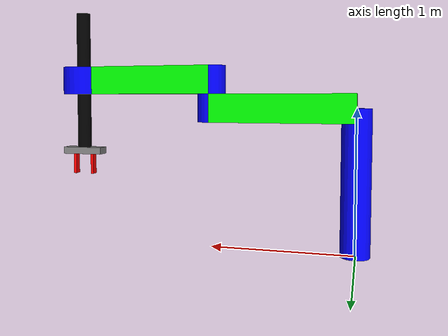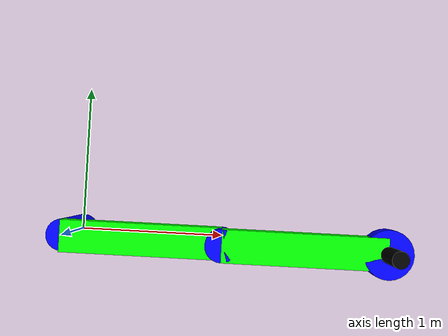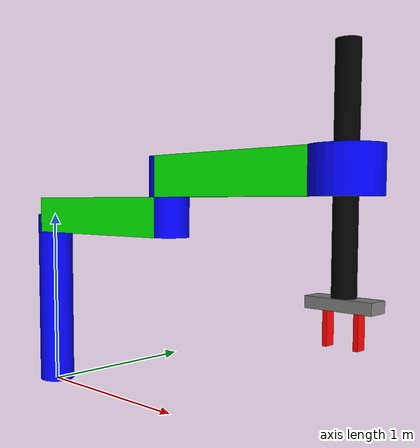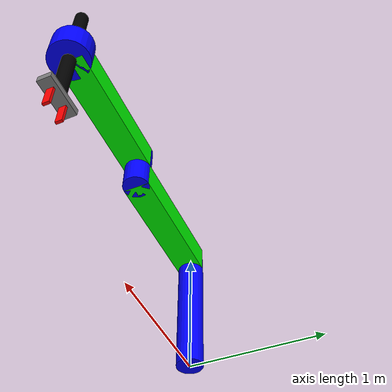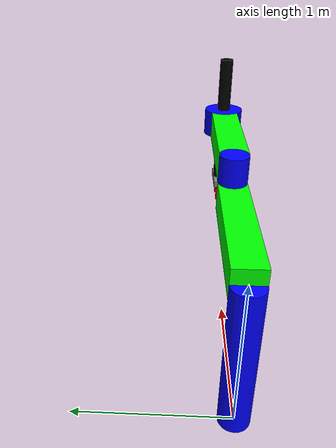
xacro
<?xml version="1.0" ?>
<robot xmlns:xacro="http://www.ros.org/wiki/xacro" name="SCARAbot">

    <xacro:include filename="$(find scara_robot_description)/urdf/robot_arm.urdf.xacro"/>
    <xacro:include filename="$(find scara_robot_description)/urdf/robot_gripper.urdf.xacro"/>

    <xacro:arg name="column_height" default="1.0"/>
    <xacro:arg name="upper_arm_length" default="1.0"/>
    <xacro:arg name="forearm_length" default="1.0"/>
    <xacro:arg name="forearm_z_offset" default="0.2"/>
    <xacro:arg name="quill_length" default="1.0"/>
    <xacro:arg name="finger_length" default="0.15"/>
    <xacro:arg name="shoulder_limit" default="${pi/2}"/>
    <xacro:arg name="elbow_limit" default="${pi/2}"/>
    <xacro:arg name="wrist_limit" default="${pi}"/>
    <xacro:arg name="quill_lower" default="-0.4"/>
    <xacro:arg name="quill_upper" default="0.3"/>
    <xacro:arg name="finger_min" default="0.02"/>
    <xacro:arg name="finger_stroke" default="0.1"/>

    <xacro:property name="quill_length" value="$(arg quill_length)"/>

    <link name="world"/>

    <xacro:scara_arm parent_link="world" xyz="0 0 0" rpy="0 0 0"
                     column_height="$(arg column_height)"
                     upper_arm_length="$(arg upper_arm_length)"
                     forearm_length="$(arg forearm_length)"
                     forearm_z_offset="$(arg forearm_z_offset)"
                     quill_length="${quill_length}"
                     shoulder_limit="$(arg shoulder_limit)"
                     elbow_limit="$(arg elbow_limit)"
                     wrist_limit="$(arg wrist_limit)"
                     quill_lower="$(arg quill_lower)"
                     quill_upper="$(arg quill_upper)"/>

    <xacro:scara_gripper parent_link="link_5" xyz="0 0 ${-quill_length/2}" rpy="0 0 0"
                         finger_length="$(arg finger_length)"
                         finger_min="$(arg finger_min)"
                         finger_stroke="$(arg finger_stroke)"/>

</robot>

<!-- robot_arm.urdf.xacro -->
<robot xmlns:xacro="http://www.ros.org/wiki/xacro" name="arm">
    <xacro:macro name="scara_arm" params="parent_link:='world' xyz:='0 0 0' rpy:='0 0 0'
                                         column_height:='1.0' upper_arm_length:='1.0' forearm_length:='1.0'
                                         forearm_z_offset:='0.2' quill_length:='1.0'
                                         shoulder_limit:='${pi/2}' elbow_limit:='${pi/2}' wrist_limit:='${pi}'
                                         quill_lower:='-0.5' quill_upper:='0.3'">

        <joint name="world_base_link_joint" type="fixed">
            <origin rpy="${rpy}" xyz="${xyz}"/>
            <parent link="${parent_link}"/>
            <child link="base_link"/>
        </joint>
        <link name="base_link">
            <visual>
                <origin rpy="0 0 0" xyz="0 0 ${column_height/2}" />
                <geometry>
                    <cylinder radius="0.1" length="${column_height}" />
                </geometry>
                <material name="Blue">
                    <color rgba="0.0 0.0 1.0 1.0" />
                </material>
            </visual>
        </link>
        <joint name="joint_1" type="revolute">
            <parent link="base_link"/>
            <child link="link_1"/>
            <origin xyz="0 0 ${column_height}" rpy="0 0 0"/>
            <axis xyz="0 0 1"/>
            <limit lower="${-shoulder_limit}" upper="${shoulder_limit}" effort="10.0" velocity="1.0"/>
        </joint>
        <link name="link_1">
            <visual>
                <origin xyz="${upper_arm_length/2} 0 0" rpy="0 0 0"/>
                <geometry>
                    <box size="${upper_arm_length} 0.2 0.2"/>
                </geometry>
                <material name="Green">
                    <color rgba="0.0 1.0 0.0 1.0" />
                </material>
            </visual>
        </link>
        <joint name="joint_2" type="revolute">
            <parent link="link_1"/>
            <child link="link_2"/>
            <origin xyz="${upper_arm_length} 0 0" rpy="0 0 0"/>
            <axis xyz="0 0 1"/>
            <limit lower="${-elbow_limit}" upper="${elbow_limit}" effort="10.0" velocity="1.0"/>
        </joint>
        <link name="link_2">
            <visual>
                <origin rpy="0 0 0" xyz="0 0 ${forearm_z_offset/2}" />
                <geometry>
                    <cylinder radius="0.1" length="${forearm_z_offset + 0.2}" />
                </geometry>
                <material name="Blue">
                    <color rgba="0.0 0.0 1.0 1.0" />
                </material>
            </visual>
        </link>
        <joint name="fixed_joint_1" type="fixed">
            <parent link="link_2"/>
            <child link="link_3"/>
            <origin xyz="0 0 0" rpy="0 0 0"/>
        </joint>
        <link name="link_3">
            <visual>
                <origin xyz="${forearm_length/2} 0 ${forearm_z_offset}" rpy="0 0 0" />
                <geometry>
                    <box size="${forearm_length} 0.2 0.2" />
                </geometry>
                <material name="Green">
                    <color rgba="0.0 1.0 0.0 1.0" />
                </material>
            </visual>
        </link>
        <joint name="joint_3" type="revolute">
            <parent link="link_2"/>
            <child link="link_4"/>
            <origin xyz="${forearm_length} 0 ${forearm_z_offset}" rpy="0 0 0"/>
            <axis xyz="0 0 1"/>
            <limit lower="${-wrist_limit}" upper="${wrist_limit}" effort="10.0" velocity="1.0"/>
        </joint>
        <link name="link_4">
            <visual>
                <origin rpy="0 0 0" xyz="0 0 0" />
                <geometry>
                    <cylinder radius="0.15" length="0.2" />
                </geometry>
                <material name="Blue">
                    <color rgba="0.0 0.0 1.0 1.0" />
                </material>
            </visual>
        </link>
        <joint name="joint_4" type="prismatic">
            <parent link="link_4"/>
            <child link="link_5"/>
            <origin xyz="0 0 0" rpy="0 0 0"/>
            <axis xyz="0 0 1"/>
            <limit lower="${quill_lower}" upper="${quill_upper}" effort="10" velocity="0.1"/>
        </joint>
        <link name="link_5">
            <visual>
                <origin rpy="0 0 0" xyz="0 0 0" />
                <geometry>
                    <cylinder radius="0.05" length="${quill_length}" />
                </geometry>
                <material name="Black">
                    <color rgba="0.0 0.0 0.0 1.0" />
                </material>
            </visual>
        </link>

    </xacro:macro>

</robot>

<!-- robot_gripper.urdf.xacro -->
<robot xmlns:xacro="http://www.ros.org/wiki/xacro">
    <xacro:macro name="scara_gripper" params="parent_link xyz:='0 0 0' rpy:='0 0 0'
                                             finger_length:='0.15' finger_min:='0.02' finger_stroke:='0.1'">

        <joint name="fixed_joint_2" type="fixed">
            <parent link="${parent_link}"/>
            <child link="link_6"/>
            <origin xyz="${xyz}" rpy="${rpy}"/>
        </joint>
        <link name="link_6">
            <visual>
                <origin xyz="0 0 -0.025" rpy="0 0 0"/>
                <geometry>
                    <box size="0.3 0.1 0.05"/>
                </geometry>
                <material name="Grey">
                    <color rgba="0.5 0.5 0.5 1.0"/>
                </material>
            </visual>
        </link>

        <joint name="joint_5" type="prismatic">
            <parent link="link_6"/>
            <child link="link_7"/>
            <origin xyz="0 0 -0.05" rpy="0 0 0"/>
            <axis xyz="1 0 0"/>
            <limit lower="${finger_min}" upper="${finger_min + finger_stroke}" effort="10" velocity="0.1"/>
        </joint>
        <link name="link_7">
            <visual>
                <origin xyz="0 0 ${-finger_length/2}" rpy="0 0 0"/>
                <geometry>
                    <box size="0.02 0.05 ${finger_length}"/>
                </geometry>
                <material name="Red">
                    <color rgba="1.0 0.0 0.0 1.0"/>
                </material>
            </visual>
        </link>
        <joint name="joint_6" type="prismatic">
            <parent link="link_6"/>
            <child link="link_8"/>
            <origin xyz="0 0 -0.05" rpy="0 0 0"/>
            <axis xyz="1 0 0"/>
            <limit lower="${-(finger_min + finger_stroke)}" upper="${-finger_min}" effort="10" velocity="0.1"/>
            <mimic joint="joint_5" multiplier="-1" offset="0"/>
        </joint>
        <link name="link_8">
            <visual>
                <origin xyz="0 0 ${-finger_length/2}" rpy="0 0 0"/>
                <geometry>
                    <box size="0.02 0.05 ${finger_length}"/>
                </geometry>
                <material name="Red">
                    <color rgba="1.0 0.0 0.0 1.0"/>
                </material>
            </visual>
        </link>
        <!-- End-effector frame -->
        <joint name="fixed_joint_3" type="fixed">
            <parent link="link_6"/>
            <child link="tcp"/>
            <origin xyz="0 0 ${-(0.05 + finger_length)}" rpy="0 0 0"/>
        </joint>
        <link name="tcp"/>

    </xacro:macro>

</robot>
